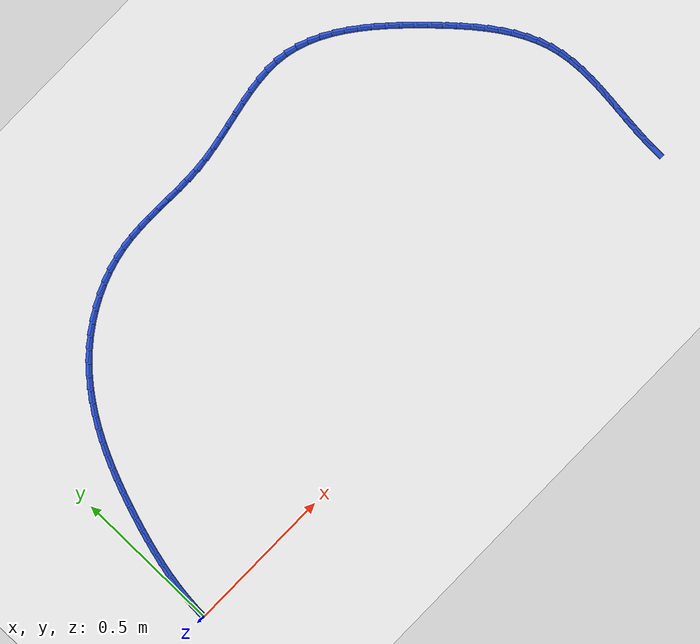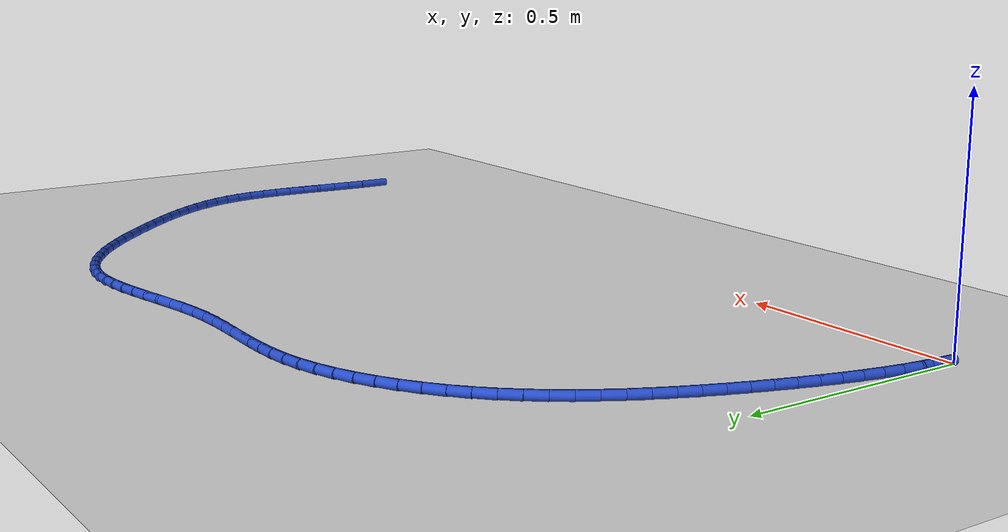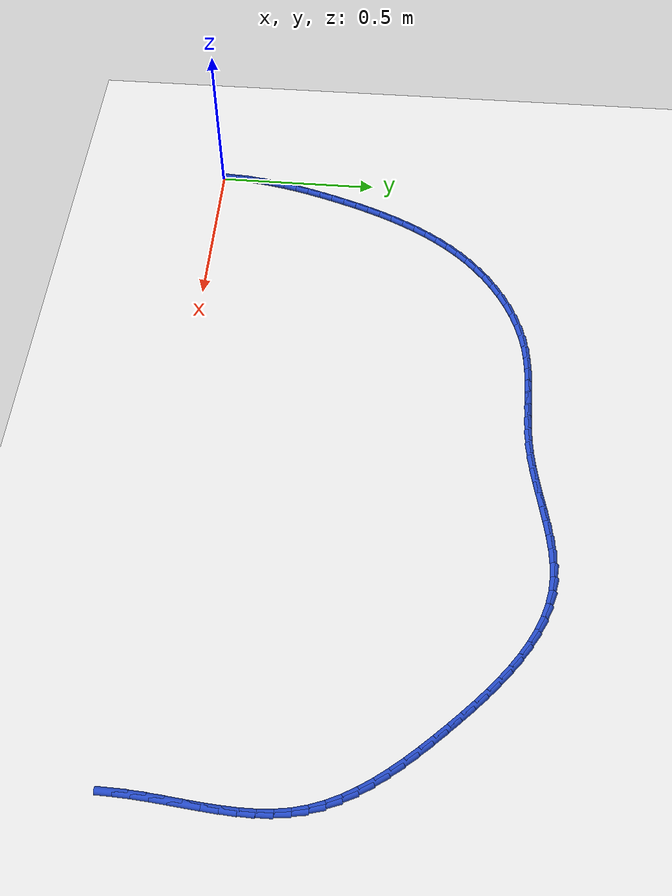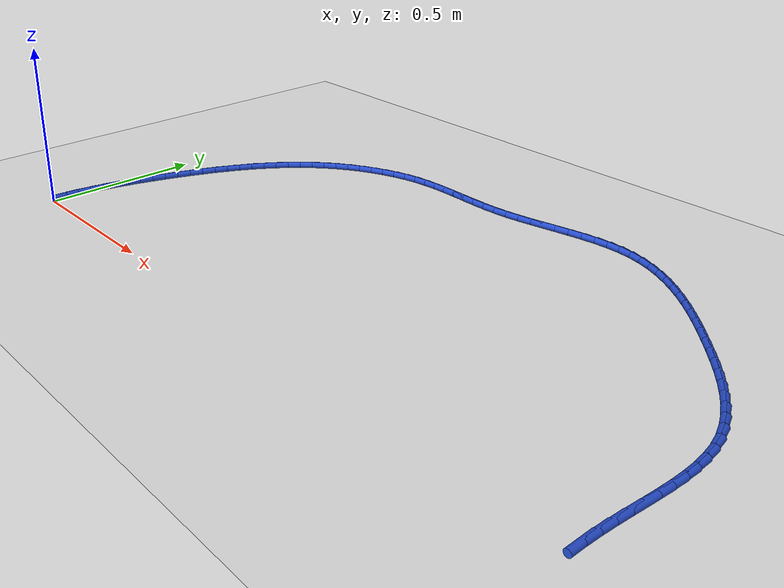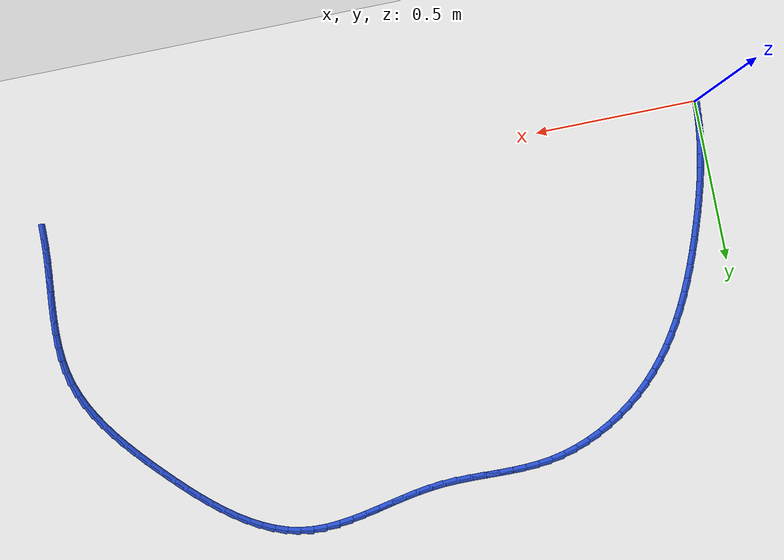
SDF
<sdf version="1.6">
 <world name="default">
  <model name="ground_plane">
   <static>1</static>
   <link name="link">
    <collision name="collision">
     <geometry><plane><normal>0 0 1</normal><size>100 100</size></plane></geometry>
     <surface><friction><ode><mu>100</mu><mu2>50</mu2></ode></friction></surface>
    </collision>
    <visual name="visual">
     <cast_shadows>0</cast_shadows>
     <geometry><plane><normal>0 0 1</normal><size>100 100</size></plane></geometry>
     <material>
      <script><uri>file://media/materials/scripts/gazebo.material</uri><name>Gazebo/WhiteGlow</name></script>
     </material>
    </visual>
   </link>
  </model>
  <model name="line">
   <link name="link_1">
    <pose>0.0018280608076796574 0.04222678442711341 0.01 0 1.57 1.4818943079029208</pose>
    <collision name="collision">
     <geometry><cylinder><radius>0.01</radius><length>0.08</length></cylinder></geometry>
    </collision>
    <visual name="visual">
     <material>
      <script><name>Gazebo/Blue</name><uri>file://media/materials/scripts/gazebo.material</uri></script>
     </material>
     <geometry><cylinder><radius>0.01</radius><length>0.08</length></cylinder></geometry>
    </visual>
   </link>
   <link name="link_2">
    <pose>0.005574457518726217 0.08425644342598523 0.01 0 1.57 1.4396662999650804</pose>
    <collision name="collision">
     <geometry><cylinder><radius>0.01</radius><length>0.08</length></cylinder></geometry>
    </collision>
    <visual name="visual">
     <material>
      <script><name>Gazebo/Blue</name><uri>file://media/materials/scripts/gazebo.material</uri></script>
     </material>
     <geometry><cylinder><radius>0.01</radius><length>0.08</length></cylinder></geometry>
    </visual>
   </link>
   <link name="link_3">
    <pose>0.011093367865162115 0.12610224677798712 0.01 0 1.57 1.4009882460465606</pose>
    <collision name="collision">
     <geometry><cylinder><radius>0.01</radius><length>0.08</length></cylinder></geometry>
    </collision>
    <visual name="visual">
     <material>
      <script><name>Gazebo/Blue</name><uri>file://media/materials/scripts/gazebo.material</uri></script>
     </material>
     <geometry><cylinder><radius>0.01</radius><length>0.08</length></cylinder></geometry>
    </visual>
   </link>
   <link name="link_4">
    <pose>0.018238969579009702 0.16777746426449028 0.01 0 1.57 1.3659340539052254</pose>
    <collision name="collision">
     <geometry><cylinder><radius>0.01</radius><length>0.08</length></cylinder></geometry>
    </collision>
    <visual name="visual">
     <material>
      <script><name>Gazebo/Blue</name><uri>file://media/materials/scripts/gazebo.material</uri></script>
     </material>
     <geometry><cylinder><radius>0.01</radius><length>0.08</length></cylinder></geometry>
    </visual>
   </link>
   <link name="link_5">
    <pose>0.026865440392291398 0.2092953656668664 0.01 0 1.57 1.3345249050419767</pose>
    <collision name="collision">
     <geometry><cylinder><radius>0.01</radius><length>0.08</length></cylinder></geometry>
    </collision>
    <visual name="visual">
     <material>
      <script><name>Gazebo/Blue</name><uri>file://media/materials/scripts/gazebo.material</uri></script>
     </material>
     <geometry><cylinder><radius>0.01</radius><length>0.08</length></cylinder></geometry>
    </visual>
   </link>
   <link name="link_6">
    <pose>0.03682695803702958 0.25066922076648684 0.01 0 1.57 1.3067430301602199</pose>
    <collision name="collision">
     <geometry><cylinder><radius>0.01</radius><length>0.08</length></cylinder></geometry>
    </collision>
    <visual name="visual">
     <material>
      <script><name>Gazebo/Blue</name><uri>file://media/materials/scripts/gazebo.material</uri></script>
     </material>
     <geometry><cylinder><radius>0.01</radius><length>0.08</length></cylinder></geometry>
    </visual>
   </link>
   <link name="link_7">
    <pose>0.04797770024524663 0.29191229934472296 0.01 0 1.57 1.2825444079119719</pose>
    <collision name="collision">
     <geometry><cylinder><radius>0.01</radius><length>0.08</length></cylinder></geometry>
    </collision>
    <visual name="visual">
     <material>
      <script><name>Gazebo/Blue</name><uri>file://media/materials/scripts/gazebo.material</uri></script>
     </material>
     <geometry><cylinder><radius>0.01</radius><length>0.08</length></cylinder></geometry>
    </visual>
   </link>
   <link name="link_8">
    <pose>0.06017184474896492 0.3330378711829463 0.01 0 1.57 1.261869805388426</pose>
    <collision name="collision">
     <geometry><cylinder><radius>0.01</radius><length>0.08</length></cylinder></geometry>
    </collision>
    <visual name="visual">
     <material>
      <script><name>Gazebo/Blue</name><uri>file://media/materials/scripts/gazebo.material</uri></script>
     </material>
     <geometry><cylinder><radius>0.01</radius><length>0.08</length></cylinder></geometry>
    </visual>
   </link>
   <link name="link_9">
    <pose>0.07326356928020687 0.3740592060625284 0.01 0 1.57 1.244089831451176</pose>
    <collision name="collision">
     <geometry><cylinder><radius>0.01</radius><length>0.08</length></cylinder></geometry>
    </collision>
    <visual name="visual">
     <material>
      <script><name>Gazebo/Blue</name><uri>file://media/materials/scripts/gazebo.material</uri></script>
     </material>
     <geometry><cylinder><radius>0.01</radius><length>0.08</length></cylinder></geometry>
    </visual>
   </link>
   <link name="link_10">
    <pose>0.0871284622791014 0.4149768102350473 0.01 0 1.57 1.2248210727207574</pose>
    <collision name="collision">
     <geometry><cylinder><radius>0.01</radius><length>0.08</length></cylinder></geometry>
    </collision>
    <visual name="visual">
     <material>
      <script><name>Gazebo/Blue</name><uri>file://media/materials/scripts/gazebo.material</uri></script>
     </material>
     <geometry><cylinder><radius>0.01</radius><length>0.08</length></cylinder></geometry>
    </visual>
   </link>
   <link name="link_11">
    <pose>0.10180581301439189 0.4556936032495387 0.01 0 1.57 1.201978175526841</pose>
    <collision name="collision">
     <geometry><cylinder><radius>0.01</radius><length>0.08</length></cylinder></geometry>
    </collision>
    <visual name="visual">
     <material>
      <script><name>Gazebo/Blue</name><uri>file://media/materials/scripts/gazebo.material</uri></script>
     </material>
     <geometry><cylinder><radius>0.01</radius><length>0.08</length></cylinder></geometry>
    </visual>
   </link>
   <link name="link_12">
    <pose>0.11741047524486156 0.49606745852134027 0.01 0 1.57 1.1754284877752654</pose>
    <collision name="collision">
     <geometry><cylinder><radius>0.01</radius><length>0.08</length></cylinder></geometry>
    </collision>
    <visual name="visual">
     <material>
      <script><name>Gazebo/Blue</name><uri>file://media/materials/scripts/gazebo.material</uri></script>
     </material>
     <geometry><cylinder><radius>0.01</radius><length>0.08</length></cylinder></geometry>
    </visual>
   </link>
   <link name="link_13">
    <pose>0.13405770877414447 0.5359560074109481 0.01 0 1.57 1.1450301556905935</pose>
    <collision name="collision">
     <geometry><cylinder><radius>0.01</radius><length>0.08</length></cylinder></geometry>
    </collision>
    <visual name="visual">
     <material>
      <script><name>Gazebo/Blue</name><uri>file://media/materials/scripts/gazebo.material</uri></script>
     </material>
     <geometry><cylinder><radius>0.01</radius><length>0.08</length></cylinder></geometry>
    </visual>
   </link>
   <link name="link_14">
    <pose>0.15186277340587476 0.5752168812788586 0.01 0 1.57 1.1106311081727345</pose>
    <collision name="collision">
     <geometry><cylinder><radius>0.01</radius><length>0.08</length></cylinder></geometry>
    </collision>
    <visual name="visual">
     <material>
      <script><name>Gazebo/Blue</name><uri>file://media/materials/scripts/gazebo.material</uri></script>
     </material>
     <geometry><cylinder><radius>0.01</radius><length>0.08</length></cylinder></geometry>
    </visual>
   </link>
   <link name="link_15">
    <pose>0.1709409289436863 0.6137077114855682 0.01 0 1.57 1.072081762744674</pose>
    <collision name="collision">
     <geometry><cylinder><radius>0.01</radius><length>0.08</length></cylinder></geometry>
    </collision>
    <visual name="visual">
     <material>
      <script><name>Gazebo/Blue</name><uri>file://media/materials/scripts/gazebo.material</uri></script>
     </material>
     <geometry><cylinder><radius>0.01</radius><length>0.08</length></cylinder></geometry>
    </visual>
   </link>
   <link name="link_16">
    <pose>0.19140743519121328 0.6512861293915729 0.01 0 1.57 1.0292515119248666</pose>
    <collision name="collision">
     <geometry><cylinder><radius>0.01</radius><length>0.08</length></cylinder></geometry>
    </collision>
    <visual name="visual">
     <material>
      <script><name>Gazebo/Blue</name><uri>file://media/materials/scripts/gazebo.material</uri></script>
     </material>
     <geometry><cylinder><radius>0.01</radius><length>0.08</length></cylinder></geometry>
    </visual>
   </link>
   <link name="link_17">
    <pose>0.2133775519520898 0.6878097663573695 0.01 0 1.57 0.9820494796564899</pose>
    <collision name="collision">
     <geometry><cylinder><radius>0.01</radius><length>0.08</length></cylinder></geometry>
    </collision>
    <visual name="visual">
     <material>
      <script><name>Gazebo/Blue</name><uri>file://media/materials/scripts/gazebo.material</uri></script>
     </material>
     <geometry><cylinder><radius>0.01</radius><length>0.08</length></cylinder></geometry>
    </visual>
   </link>
   <link name="link_18">
    <pose>0.23696653902994977 0.7231362537434536 0.01 0 1.57 0.9304494518284931</pose>
    <collision name="collision">
     <geometry><cylinder><radius>0.01</radius><length>0.08</length></cylinder></geometry>
    </collision>
    <visual name="visual">
     <material>
      <script><name>Gazebo/Blue</name><uri>file://media/materials/scripts/gazebo.material</uri></script>
     </material>
     <geometry><cylinder><radius>0.01</radius><length>0.08</length></cylinder></geometry>
    </visual>
   </link>
   <link name="link_19">
    <pose>0.2622896562284273 0.7571232229103221 0.01 0 1.57 0.8745178827878001</pose>
    <collision name="collision">
     <geometry><cylinder><radius>0.01</radius><length>0.08</length></cylinder></geometry>
    </collision>
    <visual name="visual">
     <material>
      <script><name>Gazebo/Blue</name><uri>file://media/materials/scripts/gazebo.material</uri></script>
     </material>
     <geometry><cylinder><radius>0.01</radius><length>0.08</length></cylinder></geometry>
    </visual>
   </link>
   <link name="link_20">
    <pose>0.2894621633511564 0.7896283052184709 0.01 0 1.57 0.8144424518333424</pose>
    <collision name="collision">
     <geometry><cylinder><radius>0.01</radius><length>0.08</length></cylinder></geometry>
    </collision>
    <visual name="visual">
     <material>
      <script><name>Gazebo/Blue</name><uri>file://media/materials/scripts/gazebo.material</uri></script>
     </material>
     <geometry><cylinder><radius>0.01</radius><length>0.08</length></cylinder></geometry>
    </visual>
   </link>
   <link name="link_21">
    <pose>0.3185993202017712 0.8205091320283965 0.01 0 1.57 0.7505854759910814</pose>
    <collision name="collision">
     <geometry><cylinder><radius>0.01</radius><length>0.08</length></cylinder></geometry>
    </collision>
    <visual name="visual">
     <material>
      <script><name>Gazebo/Blue</name><uri>file://media/materials/scripts/gazebo.material</uri></script>
     </material>
     <geometry><cylinder><radius>0.01</radius><length>0.08</length></cylinder></geometry>
    </visual>
   </link>
   <link name="link_22">
    <pose>0.3498143501638152 0.8496230986465624 0.01 0 1.57 0.6850379300311572</pose>
    <collision name="collision">
     <geometry><cylinder><radius>0.01</radius><length>0.08</length></cylinder></geometry>
    </collision>
    <visual name="visual">
     <material>
      <script><name>Gazebo/Blue</name><uri>file://media/materials/scripts/gazebo.material</uri></script>
     </material>
     <geometry><cylinder><radius>0.01</radius><length>0.08</length></cylinder></geometry>
    </visual>
   </link>
   <link name="link_23">
    <pose>0.3830931978431265 0.8768128467100171 0.01 0 1.57 0.6201228792375129</pose>
    <collision name="collision">
     <geometry><cylinder><radius>0.01</radius><length>0.08</length></cylinder></geometry>
    </collision>
    <visual name="visual">
     <material>
      <script><name>Gazebo/Blue</name><uri>file://media/materials/scripts/gazebo.material</uri></script>
     </material>
     <geometry><cylinder><radius>0.01</radius><length>0.08</length></cylinder></geometry>
    </visual>
   </link>
   <link name="link_24">
    <pose>0.4182215398264966 0.9018978035525261 0.01 0 1.57 0.5552920562096993</pose>
    <collision name="collision">
     <geometry><cylinder><radius>0.01</radius><length>0.08</length></cylinder></geometry>
    </collision>
    <visual name="visual">
     <material>
      <script><name>Gazebo/Blue</name><uri>file://media/materials/scripts/gazebo.material</uri></script>
     </material>
     <geometry><cylinder><radius>0.01</radius><length>0.08</length></cylinder></geometry>
    </visual>
   </link>
   <link name="link_25">
    <pose>0.454967471570498 0.9246953585704404 0.01 0 1.57 0.48976702150082624</pose>
    <collision name="collision">
     <geometry><cylinder><radius>0.01</radius><length>0.08</length></cylinder></geometry>
    </collision>
    <visual name="visual">
     <material>
      <script><name>Gazebo/Blue</name><uri>file://media/materials/scripts/gazebo.material</uri></script>
     </material>
     <geometry><cylinder><radius>0.01</radius><length>0.08</length></cylinder></geometry>
    </visual>
   </link>
   <link name="link_26">
    <pose>0.4930990885317031 0.9450229011601099 0.01 0 1.57 0.42277963646379285</pose>
    <collision name="collision">
     <geometry><cylinder><radius>0.01</radius><length>0.08</length></cylinder></geometry>
    </collision>
    <visual name="visual">
     <material>
      <script><name>Gazebo/Blue</name><uri>file://media/materials/scripts/gazebo.material</uri></script>
     </material>
     <geometry><cylinder><radius>0.01</radius><length>0.08</length></cylinder></geometry>
    </visual>
   </link>
   <link name="link_27">
    <pose>0.5323844861666845 0.9626978207178857 0.01 0 1.57 0.3535701375745545</pose>
    <collision name="collision">
     <geometry><cylinder><radius>0.01</radius><length>0.08</length></cylinder></geometry>
    </collision>
    <visual name="visual">
     <material>
      <script><name>Gazebo/Blue</name><uri>file://media/materials/scripts/gazebo.material</uri></script>
     </material>
     <geometry><cylinder><radius>0.01</radius><length>0.08</length></cylinder></geometry>
    </visual>
   </link>
   <link name="link_28">
    <pose>0.5725917599320147 0.9775375066401182 0.01 0 1.57 0.2813920196557617</pose>
    <collision name="collision">
     <geometry><cylinder><radius>0.01</radius><length>0.08</length></cylinder></geometry>
    </collision>
    <visual name="visual">
     <material>
      <script><name>Gazebo/Blue</name><uri>file://media/materials/scripts/gazebo.material</uri></script>
     </material>
     <geometry><cylinder><radius>0.01</radius><length>0.08</length></cylinder></geometry>
    </visual>
   </link>
   <link name="link_29">
    <pose>0.6134890052842659 0.989359348323158 0.01 0 1.57 0.2055275365935062</pose>
    <collision name="collision">
     <geometry><cylinder><radius>0.01</radius><length>0.08</length></cylinder></geometry>
    </collision>
    <visual name="visual">
     <material>
      <script><name>Gazebo/Blue</name><uri>file://media/materials/scripts/gazebo.material</uri></script>
     </material>
     <geometry><cylinder><radius>0.01</radius><length>0.08</length></cylinder></geometry>
    </visual>
   </link>
   <link name="link_30">
    <pose>0.6548443191412737 0.9979807410604804 0.01 0 1.57 0.12904279395965584</pose>
    <collision name="collision">
     <geometry><cylinder><radius>0.01</radius><length>0.08</length></cylinder></geometry>
    </collision>
    <visual name="visual">
     <material>
      <script><name>Gazebo/Blue</name><uri>file://media/materials/scripts/gazebo.material</uri></script>
     </material>
     <geometry><cylinder><radius>0.01</radius><length>0.08</length></cylinder></geometry>
    </visual>
   </link>
   <link name="link_31">
    <pose>0.6964661056174482 1.0033817452616896 0.01 0 1.57 0.06557926179460562</pose>
    <collision name="collision">
     <geometry><cylinder><radius>0.01</radius><length>0.08</length></cylinder></geometry>
    </collision>
    <visual name="visual">
     <material>
      <script><name>Gazebo/Blue</name><uri>file://media/materials/scripts/gazebo.material</uri></script>
     </material>
     <geometry><cylinder><radius>0.01</radius><length>0.08</length></cylinder></geometry>
    </visual>
   </link>
   <link name="link_32">
    <pose>0.7383082833534815 1.0061296647898785 0.01 0 1.57 0.01889493254458288</pose>
    <collision name="collision">
     <geometry><cylinder><radius>0.01</radius><length>0.08</length></cylinder></geometry>
    </collision>
    <visual name="visual">
     <material>
      <script><name>Gazebo/Blue</name><uri>file://media/materials/scripts/gazebo.material</uri></script>
     </material>
     <geometry><cylinder><radius>0.01</radius><length>0.08</length></cylinder></geometry>
    </visual>
   </link>
   <link name="link_33">
    <pose>0.7803575972519782 1.0069242783056895 0.01 0 1.57 -0.010863188359964675</pose>
    <collision name="collision">
     <geometry><cylinder><radius>0.01</radius><length>0.08</length></cylinder></geometry>
    </collision>
    <visual name="visual">
     <material>
      <script><name>Gazebo/Blue</name><uri>file://media/materials/scripts/gazebo.material</uri></script>
     </material>
     <geometry><cylinder><radius>0.01</radius><length>0.08</length></cylinder></geometry>
    </visual>
   </link>
   <link name="link_34">
    <pose>0.8226007922155418 1.0064653644697652 0.01 0 1.57 -0.023865607521854907</pose>
    <collision name="collision">
     <geometry><cylinder><radius>0.01</radius><length>0.08</length></cylinder></geometry>
    </collision>
    <visual name="visual">
     <material>
      <script><name>Gazebo/Blue</name><uri>file://media/materials/scripts/gazebo.material</uri></script>
     </material>
     <geometry><cylinder><radius>0.01</radius><length>0.08</length></cylinder></geometry>
    </visual>
   </link>
   <link name="link_35">
    <pose>0.8650246131467764 1.005452701942748 0.01 0 1.57 -0.020344886981176764</pose>
    <collision name="collision">
     <geometry><cylinder><radius>0.01</radius><length>0.08</length></cylinder></geometry>
    </collision>
    <visual name="visual">
     <material>
      <script><name>Gazebo/Blue</name><uri>file://media/materials/scripts/gazebo.material</uri></script>
     </material>
     <geometry><cylinder><radius>0.01</radius><length>0.08</length></cylinder></geometry>
    </visual>
   </link>
   <link name="link_36">
    <pose>0.9076158049482866 1.0045860693852804 0.01 0 1.57 -0.0004871628445204199</pose>
    <collision name="collision">
     <geometry><cylinder><radius>0.01</radius><length>0.08</length></cylinder></geometry>
    </collision>
    <visual name="visual">
     <material>
      <script><name>Gazebo/Blue</name><uri>file://media/materials/scripts/gazebo.material</uri></script>
     </material>
     <geometry><cylinder><radius>0.01</radius><length>0.08</length></cylinder></geometry>
    </visual>
   </link>
   <link name="link_37">
    <pose>0.9503611125226759 1.0045652454580052 0.01 0 1.57 0.03553876329933855</pose>
    <collision name="collision">
     <geometry><cylinder><radius>0.01</radius><length>0.08</length></cylinder></geometry>
    </collision>
    <visual name="visual">
     <material>
      <script><name>Gazebo/Blue</name><uri>file://media/materials/scripts/gazebo.material</uri></script>
     </material>
     <geometry><cylinder><radius>0.01</radius><length>0.08</length></cylinder></geometry>
    </visual>
   </link>
   <link name="link_38">
    <pose>0.9932472807725489 1.006090008821565 0.01 0 1.57 0.08709508095258915</pose>
    <collision name="collision">
     <geometry><cylinder><radius>0.01</radius><length>0.08</length></cylinder></geometry>
    </collision>
    <visual name="visual">
     <material>
      <script><name>Gazebo/Blue</name><uri>file://media/materials/scripts/gazebo.material</uri></script>
     </material>
     <geometry><cylinder><radius>0.01</radius><length>0.08</length></cylinder></geometry>
    </visual>
   </link>
   <link name="link_39">
    <pose>1.0362602418158438 1.0098457273522907 0.01 0 1.57 0.14040850093729512</pose>
    <collision name="collision">
     <geometry><cylinder><radius>0.01</radius><length>0.08</length></cylinder></geometry>
    </collision>
    <visual name="visual">
     <material>
      <script><name>Gazebo/Blue</name><uri>file://media/materials/scripts/gazebo.material</uri></script>
     </material>
     <geometry><cylinder><radius>0.01</radius><length>0.08</length></cylinder></geometry>
    </visual>
   </link>
   <link name="link_40">
    <pose>1.0793531386984072 1.0159364141526273 0.01 0 1.57 0.17825313718337404</pose>
    <collision name="collision">
     <geometry><cylinder><radius>0.01</radius><length>0.08</length></cylinder></geometry>
    </collision>
    <visual name="visual">
     <material>
      <script><name>Gazebo/Blue</name><uri>file://media/materials/scripts/gazebo.material</uri></script>
     </material>
     <geometry><cylinder><radius>0.01</radius><length>0.08</length></cylinder></geometry>
    </visual>
   </link>
   <link name="link_41">
    <pose>1.1224358175467575 1.0236984219691931 0.01 0 1.57 0.20010639664537083</pose>
    <collision name="collision">
     <geometry><cylinder><radius>0.01</radius><length>0.08</length></cylinder></geometry>
    </collision>
    <visual name="visual">
     <material>
      <script><name>Gazebo/Blue</name><uri>file://media/materials/scripts/gazebo.material</uri></script>
     </material>
     <geometry><cylinder><radius>0.01</radius><length>0.08</length></cylinder></geometry>
    </visual>
   </link>
   <link name="link_42">
    <pose>1.16541515909238 1.0324155266854427 0.01 0 1.57 0.20635569568912285</pose>
    <collision name="collision">
     <geometry><cylinder><radius>0.01</radius><length>0.08</length></cylinder></geometry>
    </collision>
    <visual name="visual">
     <material>
      <script><name>Gazebo/Blue</name><uri>file://media/materials/scripts/gazebo.material</uri></script>
     </material>
     <geometry><cylinder><radius>0.01</radius><length>0.08</length></cylinder></geometry>
    </visual>
   </link>
   <link name="link_43">
    <pose>1.2081980440667628 1.0413715041848297 0.01 0 1.57 0.19694215189788464</pose>
    <collision name="collision">
     <geometry><cylinder><radius>0.01</radius><length>0.08</length></cylinder></geometry>
    </collision>
    <visual name="visual">
     <material>
      <script><name>Gazebo/Blue</name><uri>file://media/materials/scripts/gazebo.material</uri></script>
     </material>
     <geometry><cylinder><radius>0.01</radius><length>0.08</length></cylinder></geometry>
    </visual>
   </link>
   <link name="link_44">
    <pose>1.2506913532013932 1.0498501303508094 0.01 0 1.57 0.17130246799780782</pose>
    <collision name="collision">
     <geometry><cylinder><radius>0.01</radius><length>0.08</length></cylinder></geometry>
    </collision>
    <visual name="visual">
     <material>
      <script><name>Gazebo/Blue</name><uri>file://media/materials/scripts/gazebo.material</uri></script>
     </material>
     <geometry><cylinder><radius>0.01</radius><length>0.08</length></cylinder></geometry>
    </visual>
   </link>
   <link name="link_45">
    <pose>1.2928019672277582 1.057135181066836 0.01 0 1.57 0.12839454949498158</pose>
    <collision name="collision">
     <geometry><cylinder><radius>0.01</radius><length>0.08</length></cylinder></geometry>
    </collision>
    <visual name="visual">
     <material>
      <script><name>Gazebo/Blue</name><uri>file://media/materials/scripts/gazebo.material</uri></script>
     </material>
     <geometry><cylinder><radius>0.01</radius><length>0.08</length></cylinder></geometry>
    </visual>
   </link>
   <link name="link_46">
    <pose>1.3344367668773451 1.062510432216364 0.01 0 1.57 0.06684703174045518</pose>
    <collision name="collision">
     <geometry><cylinder><radius>0.01</radius><length>0.08</length></cylinder></geometry>
    </collision>
    <visual name="visual">
     <material>
      <script><name>Gazebo/Blue</name><uri>file://media/materials/scripts/gazebo.material</uri></script>
     </material>
     <geometry><cylinder><radius>0.01</radius><length>0.08</length></cylinder></geometry>
    </visual>
   </link>
   <link name="link_47">
    <pose>1.3755026328816409 1.0652596596828483 0.01 0 1.57 -0.014676282004360705</pose>
    <collision name="collision">
     <geometry><cylinder><radius>0.01</radius><length>0.08</length></cylinder></geometry>
    </collision>
    <visual name="visual">
     <material>
      <script><name>Gazebo/Blue</name><uri>file://media/materials/scripts/gazebo.material</uri></script>
     </material>
     <geometry><cylinder><radius>0.01</radius><length>0.08</length></cylinder></geometry>
    </visual>
   </link>
   <link name="link_48">
    <pose>1.4159064459721336 1.064666639349743 0.01 0 1.57 -0.11672054544691289</pose>
    <collision name="collision">
     <geometry><cylinder><radius>0.01</radius><length>0.08</length></cylinder></geometry>
    </collision>
    <visual name="visual">
     <material>
      <script><name>Gazebo/Blue</name><uri>file://media/materials/scripts/gazebo.material</uri></script>
     </material>
     <geometry><cylinder><radius>0.01</radius><length>0.08</length></cylinder></geometry>
    </visual>
   </link>
   <link name="link_49">
    <pose>1.4555553449067007 1.060017666993778 0.01 0 1.57 -0.2296459802357283</pose>
    <collision name="collision">
     <geometry><cylinder><radius>0.01</radius><length>0.08</length></cylinder></geometry>
    </collision>
    <visual name="visual">
     <material>
      <script><name>Gazebo/Blue</name><uri>file://media/materials/scripts/gazebo.material</uri></script>
     </material>
     <geometry><cylinder><radius>0.01</radius><length>0.08</length></cylinder></geometry>
    </visual>
   </link>
   <link name="link_50">
    <pose>1.4943912782731497 1.0509389922077446 0.01 0 1.57 -0.3340972530840046</pose>
    <collision name="collision">
     <geometry><cylinder><radius>0.01</radius><length>0.08</length></cylinder></geometry>
    </collision>
    <visual name="visual">
     <material>
      <script><name>Gazebo/Blue</name><uri>file://media/materials/scripts/gazebo.material</uri></script>
     </material>
     <geometry><cylinder><radius>0.01</radius><length>0.08</length></cylinder></geometry>
    </visual>
   </link>
   <link name="link_51">
    <pose>1.5324258221747142 1.0377368489342567 0.01 0 1.57 -0.42674391120072797</pose>
    <collision name="collision">
     <geometry><cylinder><radius>0.01</radius><length>0.08</length></cylinder></geometry>
    </collision>
    <visual name="visual">
     <material>
      <script><name>Gazebo/Blue</name><uri>file://media/materials/scripts/gazebo.material</uri></script>
     </material>
     <geometry><cylinder><radius>0.01</radius><length>0.08</length></cylinder></geometry>
    </visual>
   </link>
   <link name="link_52">
    <pose>1.5696788420317873 1.0207984248295154 0.01 0 1.57 -0.507402904426464</pose>
    <collision name="collision">
     <geometry><cylinder><radius>0.01</radius><length>0.08</length></cylinder></geometry>
    </collision>
    <visual name="visual">
     <material>
      <script><name>Gazebo/Blue</name><uri>file://media/materials/scripts/gazebo.material</uri></script>
     </material>
     <geometry><cylinder><radius>0.01</radius><length>0.08</length></cylinder></geometry>
    </visual>
   </link>
   <link name="link_53">
    <pose>1.606170203264766 1.0005109075497223 0.01 0 1.57 -0.5766151571464926</pose>
    <collision name="collision">
     <geometry><cylinder><radius>0.01</radius><length>0.08</length></cylinder></geometry>
    </collision>
    <visual name="visual">
     <material>
      <script><name>Gazebo/Blue</name><uri>file://media/materials/scripts/gazebo.material</uri></script>
     </material>
     <geometry><cylinder><radius>0.01</radius><length>0.08</length></cylinder></geometry>
    </visual>
   </link>
   <link name="link_54">
    <pose>1.641919771294044 0.9772614847510781 0.01 0 1.57 -0.635291284964375</pose>
    <collision name="collision">
     <geometry><cylinder><radius>0.01</radius><length>0.08</length></cylinder></geometry>
    </collision>
    <visual name="visual">
     <material>
      <script><name>Gazebo/Blue</name><uri>file://media/materials/scripts/gazebo.material</uri></script>
     </material>
     <geometry><cylinder><radius>0.01</radius><length>0.08</length></cylinder></geometry>
    </visual>
   </link>
   <link name="link_55">
    <pose>1.6769474115400178 0.9514373440897841 0.01 0 1.57 -0.684456145345269</pose>
    <collision name="collision">
     <geometry><cylinder><radius>0.01</radius><length>0.08</length></cylinder></geometry>
    </collision>
    <visual name="visual">
     <material>
      <script><name>Gazebo/Blue</name><uri>file://media/materials/scripts/gazebo.material</uri></script>
     </material>
     <geometry><cylinder><radius>0.01</radius><length>0.08</length></cylinder></geometry>
    </visual>
   </link>
   <link name="link_56">
    <pose>1.711272989423082 0.9234256732220407 0.01 0 1.57 -0.7250924663818041</pose>
    <collision name="collision">
     <geometry><cylinder><radius>0.01</radius><length>0.08</length></cylinder></geometry>
    </collision>
    <visual name="visual">
     <material>
      <script><name>Gazebo/Blue</name><uri>file://media/materials/scripts/gazebo.material</uri></script>
     </material>
     <geometry><cylinder><radius>0.01</radius><length>0.08</length></cylinder></geometry>
    </visual>
   </link>
   <link name="link_57">
    <pose>1.7449163703636315 0.8936136598040496 0.01 0 1.57 -0.75805745355408</pose>
    <collision name="collision">
     <geometry><cylinder><radius>0.01</radius><length>0.08</length></cylinder></geometry>
    </collision>
    <visual name="visual">
     <material>
      <script><name>Gazebo/Blue</name><uri>file://media/materials/scripts/gazebo.material</uri></script>
     </material>
     <geometry><cylinder><radius>0.01</radius><length>0.08</length></cylinder></geometry>
    </visual>
   </link>
   <link name="link_58">
    <pose>1.7778974197820625 0.8623884914920115 0.01 0 1.57 -0.7840442681502652</pose>
    <collision name="collision">
     <geometry><cylinder><radius>0.01</radius><length>0.08</length></cylinder></geometry>
    </collision>
    <visual name="visual">
     <material>
      <script><name>Gazebo/Blue</name><uri>file://media/materials/scripts/gazebo.material</uri></script>
     </material>
     <geometry><cylinder><radius>0.01</radius><length>0.08</length></cylinder></geometry>
    </visual>
   </link>
   <link name="link_59">
    <pose>1.8102360030987683 0.8301373559421276 0.01 0 1.57 -0.803566834709716</pose>
    <collision name="collision">
     <geometry><cylinder><radius>0.01</radius><length>0.08</length></cylinder></geometry>
    </collision>
    <visual name="visual">
     <material>
      <script><name>Gazebo/Blue</name><uri>file://media/materials/scripts/gazebo.material</uri></script>
     </material>
     <geometry><cylinder><radius>0.01</radius><length>0.08</length></cylinder></geometry>
    </visual>
   </link>
   <link name="link_60">
    <pose>1.8419519857341462 0.7972474408105988 0.01 0 1.57 -0.8186216417248469</pose>
    <collision name="collision">
     <geometry><cylinder><radius>0.01</radius><length>0.08</length></cylinder></geometry>
    </collision>
    <visual name="visual">
     <material>
      <script><name>Gazebo/Blue</name><uri>file://media/materials/scripts/gazebo.material</uri></script>
     </material>
     <geometry><cylinder><radius>0.01</radius><length>0.08</length></cylinder></geometry>
    </visual>
   </link>
   <link name="link_61">
    <pose>1.8730176154194262 0.7640458443804568 0.01 0 1.57 -0.8381725714186723</pose>
    <collision name="collision">
     <geometry><cylinder><radius>0.01</radius><length>0.08</length></cylinder></geometry>
    </collision>
    <visual name="visual">
     <material>
      <script><name>Gazebo/Blue</name><uri>file://media/materials/scripts/gazebo.material</uri></script>
     </material>
     <geometry><cylinder><radius>0.01</radius><length>0.08</length></cylinder></geometry>
    </visual>
   </link>
   <link name="link_62">
    <pose>1.9031562481956132 0.7305455853161041 0.01 0 1.57 -0.8654636048547081</pose>
    <collision name="collision">
     <geometry><cylinder><radius>0.01</radius><length>0.08</length></cylinder></geometry>
    </collision>
    <visual name="visual">
     <material>
      <script><name>Gazebo/Blue</name><uri>file://media/materials/scripts/gazebo.material</uri></script>
     </material>
     <geometry><cylinder><radius>0.01</radius><length>0.08</length></cylinder></geometry>
    </visual>
   </link>
   <link name="link_63">
    <pose>1.9320101907741576 0.6966574050926418 0.01 0 1.57 -0.9010579109764761</pose>
    <collision name="collision">
     <geometry><cylinder><radius>0.01</radius><length>0.08</length></cylinder></geometry>
    </collision>
    <visual name="visual">
     <material>
      <script><name>Gazebo/Blue</name><uri>file://media/materials/scripts/gazebo.material</uri></script>
     </material>
     <geometry><cylinder><radius>0.01</radius><length>0.08</length></cylinder></geometry>
    </visual>
   </link>
   <link name="link_64">
    <pose>1.9592217058436445 0.662291989632152 0.01 0 1.57 -0.9456366709047839</pose>
    <collision name="collision">
     <geometry><cylinder><radius>0.01</radius><length>0.08</length></cylinder></geometry>
    </collision>
    <visual name="visual">
     <material>
      <script><name>Gazebo/Blue</name><uri>file://media/materials/scripts/gazebo.material</uri></script>
     </material>
     <geometry><cylinder><radius>0.01</radius><length>0.08</length></cylinder></geometry>
    </visual>
   </link>
   <link name="link_65">
    <pose>1.984433056092657 0.6273600248567145 0.01 0 1.57 -0.9999449595936909</pose>
    <collision name="collision">
     <geometry><cylinder><radius>0.01</radius><length>0.08</length></cylinder></geometry>
    </collision>
    <visual name="visual">
     <material>
      <script><name>Gazebo/Blue</name><uri>file://media/materials/scripts/gazebo.material</uri></script>
     </material>
     <geometry><cylinder><radius>0.01</radius><length>0.08</length></cylinder></geometry>
    </visual>
   </link>
   <link name="link_66">
    <pose>2.007286504209779 0.5917721966884102 0.01 0 1.57 -1.0646909573145942</pose>
    <collision name="collision">
     <geometry><cylinder><radius>0.01</radius><length>0.08</length></cylinder></geometry>
    </collision>
    <visual name="visual">
     <material>
      <script><name>Gazebo/Blue</name><uri>file://media/materials/scripts/gazebo.material</uri></script>
     </material>
     <geometry><cylinder><radius>0.01</radius><length>0.08</length></cylinder></geometry>
    </visual>
   </link>
   <link name="link_67">
    <pose>2.0274243128835945 0.5554391910493204 0.01 0 1.57 -1.1403821275413921</pose>
    <collision name="collision">
     <geometry><cylinder><radius>0.01</radius><length>0.08</length></cylinder></geometry>
    </collision>
    <visual name="visual">
     <material>
      <script><name>Gazebo/Blue</name><uri>file://media/materials/scripts/gazebo.material</uri></script>
     </material>
     <geometry><cylinder><radius>0.01</radius><length>0.08</length></cylinder></geometry>
    </visual>
   </link>
   <link name="link_68">
    <pose>2.0444887448026865 0.5182716938615252 0.01 0 1.57 -1.2270908013206259</pose>
    <collision name="collision">
     <geometry><cylinder><radius>0.01</radius><length>0.08</length></cylinder></geometry>
    </collision>
    <visual name="visual">
     <material>
      <script><name>Gazebo/Blue</name><uri>file://media/materials/scripts/gazebo.material</uri></script>
     </material>
     <geometry><cylinder><radius>0.01</radius><length>0.08</length></cylinder></geometry>
    </visual>
   </link>
   <link name="link_69">
    <pose>2.0581220626556394 0.480180391047106 0.01 0 1.57 -1.3238222673509852</pose>
    <collision name="collision">
     <geometry><cylinder><radius>0.01</radius><length>0.08</length></cylinder></geometry>
    </collision>
    <visual name="visual">
     <material>
      <script><name>Gazebo/Blue</name><uri>file://media/materials/scripts/gazebo.material</uri></script>
     </material>
     <geometry><cylinder><radius>0.01</radius><length>0.08</length></cylinder></geometry>
    </visual>
   </link>
   <link name="link_70">
    <pose>2.0679803225079194 0.441079113395375 0.01 0 1.57 -1.4185675452661772</pose>
    <collision name="collision">
     <geometry><cylinder><radius>0.01</radius><length>0.08</length></cylinder></geometry>
    </collision>
    <visual name="visual">
     <material>
      <script><name>Gazebo/Blue</name><uri>file://media/materials/scripts/gazebo.material</uri></script>
     </material>
     <geometry><cylinder><radius>0.01</radius><length>0.08</length></cylinder></geometry>
    </visual>
   </link>
   <link name="link_71">
    <pose>2.074132784080292 0.40097590144910705 0.01 0 1.57 -1.4979611683045215</pose>
    <collision name="collision">
     <geometry><cylinder><radius>0.01</radius><length>0.08</length></cylinder></geometry>
    </collision>
    <visual name="visual">
     <material>
      <script><name>Gazebo/Blue</name><uri>file://media/materials/scripts/gazebo.material</uri></script>
     </material>
     <geometry><cylinder><radius>0.01</radius><length>0.08</length></cylinder></geometry>
    </visual>
   </link>
   <link name="link_72">
    <pose>2.07712350408935 0.35998704868482706 0.01 0 1.57 -1.5612349297874002</pose>
    <collision name="collision">
     <geometry><cylinder><radius>0.01</radius><length>0.08</length></cylinder></geometry>
    </collision>
    <visual name="visual">
     <material>
      <script><name>Gazebo/Blue</name><uri>file://media/materials/scripts/gazebo.material</uri></script>
     </material>
     <geometry><cylinder><radius>0.01</radius><length>0.08</length></cylinder></geometry>
    </visual>
   </link>
   <link name="link_73">
    <pose>2.0775227258981763 0.31823481909136697 0.01 0 1.57 1.5325534775962923</pose>
    <collision name="collision">
     <geometry><cylinder><radius>0.01</radius><length>0.08</length></cylinder></geometry>
    </collision>
    <visual name="visual">
     <material>
      <script><name>Gazebo/Blue</name><uri>file://media/materials/scripts/gazebo.material</uri></script>
     </material>
     <geometry><cylinder><radius>0.01</radius><length>0.08</length></cylinder></geometry>
    </visual>
   </link>
   <link name="link_74">
    <pose>2.075900692869856 0.2758414766575605 0.01 0 1.57 1.4993059806733562</pose>
    <collision name="collision">
     <geometry><cylinder><radius>0.01</radius><length>0.08</length></cylinder></geometry>
    </collision>
    <visual name="visual">
     <material>
      <script><name>Gazebo/Blue</name><uri>file://media/materials/scripts/gazebo.material</uri></script>
     </material>
     <geometry><cylinder><radius>0.01</radius><length>0.08</length></cylinder></geometry>
    </visual>
   </link>
   <link name="link_75">
    <pose>2.0728276483674697 0.2329292853722395 0.01 0 1.57 1.4797551291817428</pose>
    <collision name="collision">
     <geometry><cylinder><radius>0.01</radius><length>0.08</length></cylinder></geometry>
    </collision>
    <visual name="visual">
     <material>
      <script><name>Gazebo/Blue</name><uri>file://media/materials/scripts/gazebo.material</uri></script>
     </material>
     <geometry><cylinder><radius>0.01</radius><length>0.08</length></cylinder></geometry>
    </visual>
   </link>
   <link name="link_76">
    <pose>2.068873835754103 0.18962050922423668 0.01 0 1.57 1.4732629435620859</pose>
    <collision name="collision">
     <geometry><cylinder><radius>0.01</radius><length>0.08</length></cylinder></geometry>
    </collision>
    <visual name="visual">
     <material>
      <script><name>Gazebo/Blue</name><uri>file://media/materials/scripts/gazebo.material</uri></script>
     </material>
     <geometry><cylinder><radius>0.01</radius><length>0.08</length></cylinder></geometry>
    </visual>
   </link>
   <link name="link_77">
    <pose>2.0646094983928385 0.14603741220238525 0.01 0 1.57 1.4794857327110826</pose>
    <collision name="collision">
     <geometry><cylinder><radius>0.01</radius><length>0.08</length></cylinder></geometry>
    </collision>
    <visual name="visual">
     <material>
      <script><name>Gazebo/Blue</name><uri>file://media/materials/scripts/gazebo.material</uri></script>
     </material>
     <geometry><cylinder><radius>0.01</radius><length>0.08</length></cylinder></geometry>
    </visual>
   </link>
   <link name="link_78">
    <pose>2.060604879646759 0.10230225829551734 0.01 0 1.57 1.4983843553255272</pose>
    <collision name="collision">
     <geometry><cylinder><radius>0.01</radius><length>0.08</length></cylinder></geometry>
    </collision>
    <visual name="visual">
     <material>
      <script><name>Gazebo/Blue</name><uri>file://media/materials/scripts/gazebo.material</uri></script>
     </material>
     <geometry><cylinder><radius>0.01</radius><length>0.08</length></cylinder></geometry>
    </visual>
   </link>
   <link name="link_79">
    <pose>2.0574302228625445 0.058537311490611976 0.01 0 1.57 1.5268293723119637</pose>
    <collision name="collision">
     <geometry><cylinder><radius>0.01</radius><length>0.08</length></cylinder></geometry>
    </collision>
    <visual name="visual">
     <material>
      <script><name>Gazebo/Blue</name><uri>file://media/materials/scripts/gazebo.material</uri></script>
     </material>
     <geometry><cylinder><radius>0.01</radius><length>0.08</length></cylinder></geometry>
    </visual>
   </link>
   <link name="link_80">
    <pose>2.055508104524801 0.014848144111772259 0.01 0 1.57 1.5517693736766867</pose>
    <collision name="collision">
     <geometry><cylinder><radius>0.01</radius><length>0.08</length></cylinder></geometry>
    </collision>
    <visual name="visual">
     <material>
      <script><name>Gazebo/Blue</name><uri>file://media/materials/scripts/gazebo.material</uri></script>
     </material>
     <geometry><cylinder><radius>0.01</radius><length>0.08</length></cylinder></geometry>
    </visual>
   </link>
   <link name="link_161">
    <pose>0.0018573296024375803 0.04220394153027818 0.01 0 1.57 1.526816265453928</pose>
    <collision name="collision">
     <geometry><cylinder><radius>0.01</radius><length>0.08</length></cylinder></geometry>
    </collision>
    <visual name="visual">
     <material>
      <script><name>Gazebo/Blue</name><uri>file://media/materials/scripts/gazebo.material</uri></script>
     </material>
     <geometry><cylinder><radius>0.01</radius><length>0.08</length></cylinder></geometry>
    </visual>
   </link>
  </model>
 </world>
</sdf>
